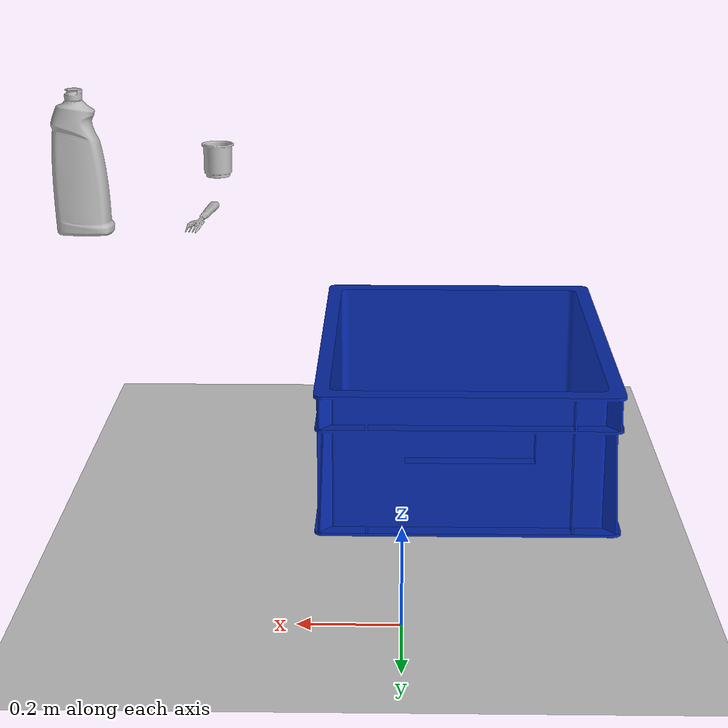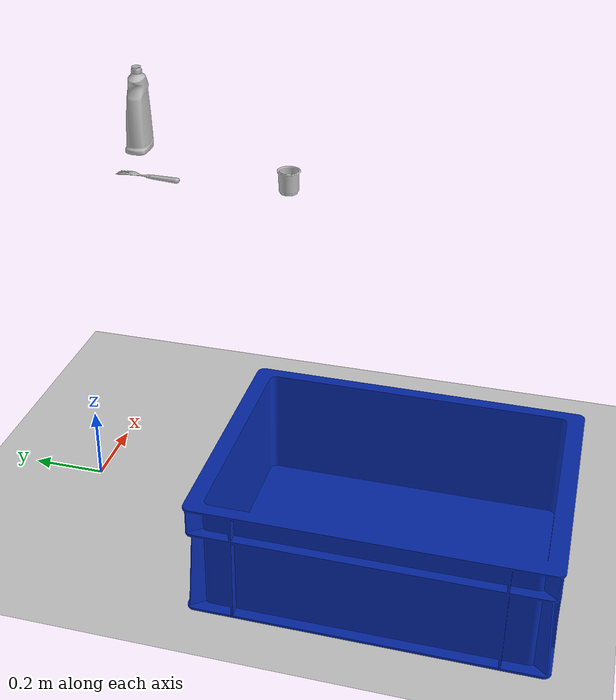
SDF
<sdf version="1.7">
 <world name="reachy_minimal">
  <plugin name="reachy_gazebo_gripper_glue" filename="libreachy_gazebo_gripper_glue.so"/>
  <physics type="ode"><real_time_update_rate>1000.0</real_time_update_rate></physics>
  <include><uri>model://sun</uri></include>
  <include><uri>model://ground_plane</uri></include>
  <model name="dropoff_box">
   <pose>-0.131978 -0.877815 0 0 -0 0</pose>
   <static>1</static>
   <link name="link">
    <inertial>
     <mass>1</mass>
     <inertia>
      <ixx>0.0755262</ixx>
      <ixy>0</ixy>
      <ixz>0</ixz>
      <iyy>0.0441608</iyy>
      <iyz>0</iyz>
      <izz>0.103304</izz>
     </inertia>
    </inertial>
    <collision name="collision">
     <geometry><mesh><uri>model://dropoff_box/meshes/box_v1.stl</uri><scale>1 1 1</scale></mesh></geometry>
     <surface>
      <friction><ode><mu>30</mu><mu2>30</mu2></ode></friction>
      <contact>
       <ode>
        <soft_cfm>0</soft_cfm>
        <soft_erp>0.2</soft_erp>
        <kp>1e+13</kp>
        <kd>1</kd>
        <max_vel>0.01</max_vel>
        <min_depth>0</min_depth>
       </ode>
      </contact>
     </surface>
    </collision>
    <visual name="visual">
     <geometry><mesh><uri>model://dropoff_box/meshes/box_v1.dae</uri><scale>1 1 1</scale></mesh></geometry>
    </visual>
    <velocity_decay><linear>0</linear><angular>0</angular></velocity_decay>
   </link>
   <pose>-0.131978 -0.654128 0 0 -0 0</pose>
  </model>
  <model name="ycb_021_bleach_cleanser">
   <link name="body">
    <inertial>
     <mass>1.131</mass>
     <pose>-0.017139 0.011574 0.099698 0 -0 0</pose>
     <inertia>
      <ixx>0.0049251</ixx>
      <ixy>3.99367e-06</ixy>
      <ixz>-0.000285046</ixz>
      <iyy>0.00531114</iyy>
      <iyz>2.47636e-06</iyz>
      <izz>0.000910304</izz>
     </inertia>
    </inertial>
    <visual name="ycb_021_bleach_cleanser_visual">
     <geometry><mesh><uri>model://ycb_021_bleach_cleanser/meshes/textured.dae</uri></mesh></geometry>
    </visual>
    <collision name="ycb_021_bleach_cleanser_collision">
     <geometry><mesh><uri>model://ycb_021_bleach_cleanser/meshes/nontextured.stl</uri></mesh></geometry>
     <surface><contact><ode><kp>1e+15</kp><kd>1e+13</kd></ode></contact></surface>
    </collision>
   </link>
   <pose>0.579100 0.034496 0.775622 0 -0 0</pose>
  </model>
  <model name="ycb_030_fork">
   <link name="body">
    <inertial>
     <mass>0.034</mass>
     <pose>0.0085 -0.021533 0.006709 0 -0 0</pose>
     <inertia>
      <ixx>1.15216e-06</ixx>
      <ixy>8.22983e-08</ixy>
      <ixz>-1.09622e-06</ixz>
      <iyy>8.14008e-05</iyy>
      <iyz>6.4408e-08</iyz>
      <izz>8.18835e-05</izz>
     </inertia>
    </inertial>
    <visual name="ycb_030_fork_visual">
     <geometry><mesh><uri>model://ycb_030_fork/meshes/textured.dae</uri></mesh></geometry>
    </visual>
    <collision name="ycb_030_fork_collision">
     <geometry><mesh><uri>model://ycb_030_fork/meshes/nontextured.stl</uri></mesh></geometry>
     <surface><contact><ode><kp>1e+15</kp><kd>1e+13</kd></ode></contact></surface>
    </collision>
   </link>
   <pose>0.380599 -0.082195 0.777152 0.113089 -0 -1.698582</pose>
  </model>
  <model name="task1_shapeitem_ycb_065-c_cups_7">
   <link name="body">
    <inertial>
     <mass>0.031</mass>
     <pose>-0.014475 -0.064617 0.031162 0 -0 0</pose>
     <inertia>
      <ixx>2.28047e-05</ixx>
      <ixy>-8.40704e-08</ixy>
      <ixz>7.88861e-08</ixz>
      <iyy>2.2028e-05</iyy>
      <iyz>7.40173e-07</iyz>
      <izz>2.07973e-05</izz>
     </inertia>
    </inertial>
    <visual name="ycb_065-c_cups_visual">
     <geometry><mesh><uri>model://ycb_065-c_cups/meshes/textured.dae</uri></mesh></geometry>
    </visual>
    <collision name="ycb_065-c_cups_collision">
     <geometry><mesh><uri>model://ycb_065-c_cups/meshes/nontextured.stl</uri></mesh></geometry>
     <surface>
      <contact><ode><kp>2e+9</kp><kd>2e+9</kd></ode></contact>
      <friction><ode><mu>0.2</mu><mu2>0.2</mu2></ode></friction>
     </surface>
    </collision>
    <self_collide>1</self_collide>
   </link>
   <pose>0.390549 -0.394244 0.772416 0 0 0</pose>
  </model>
 </world>
</sdf>
